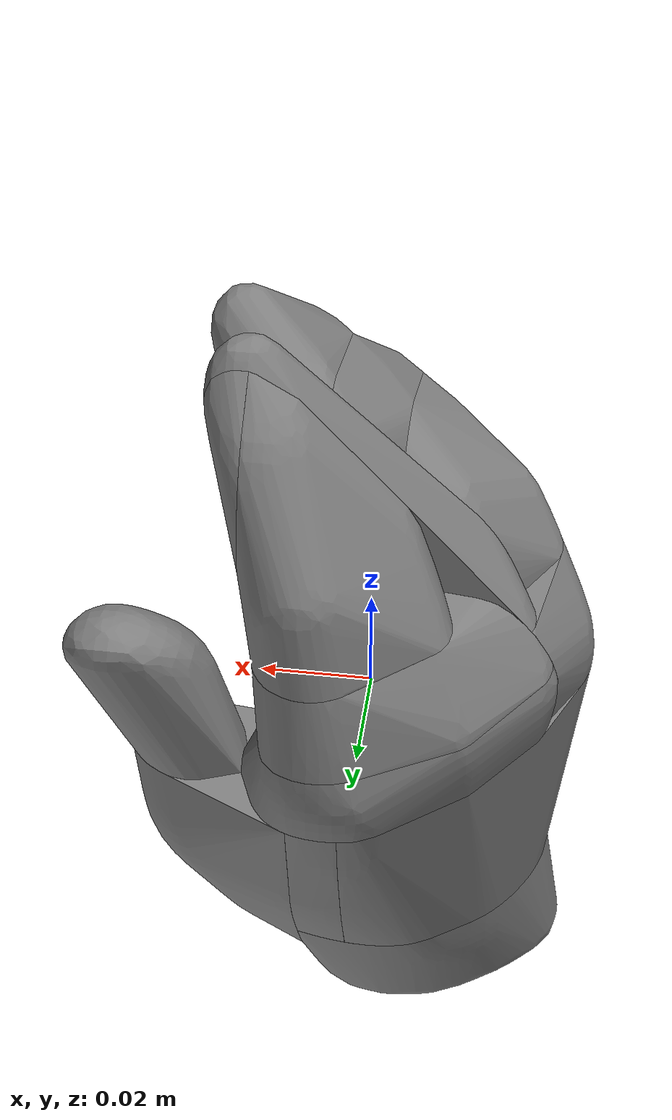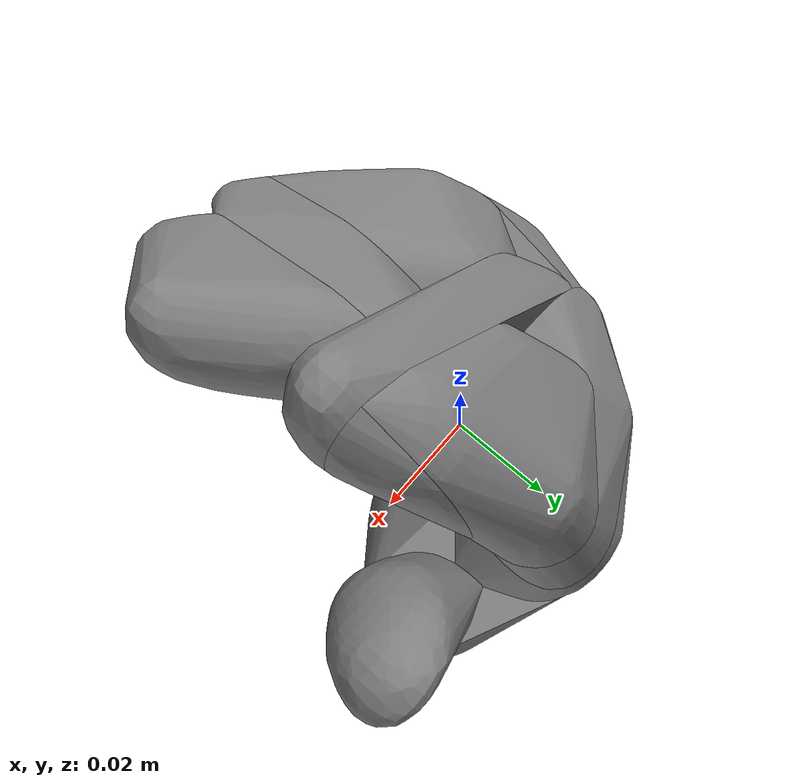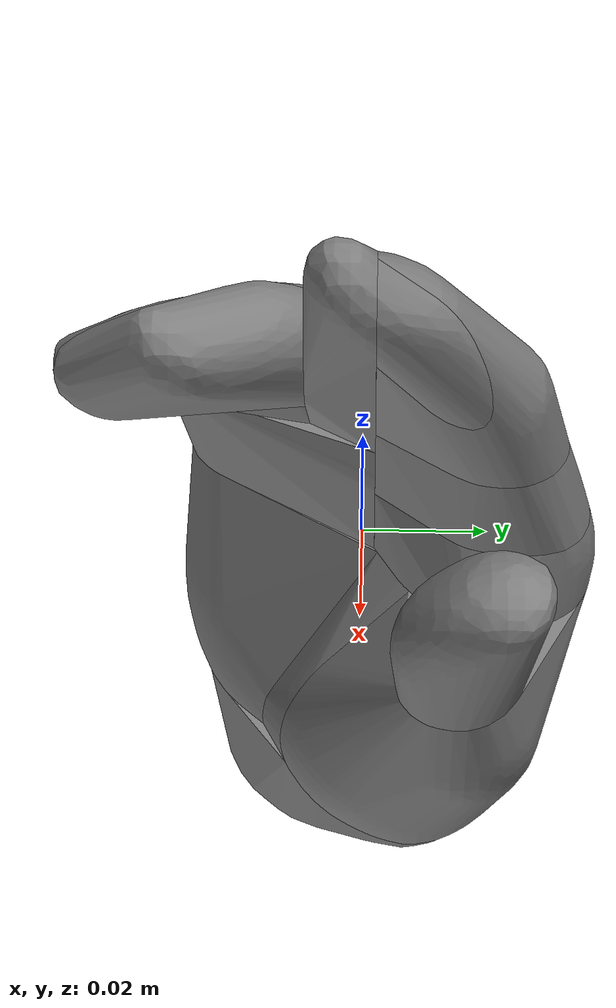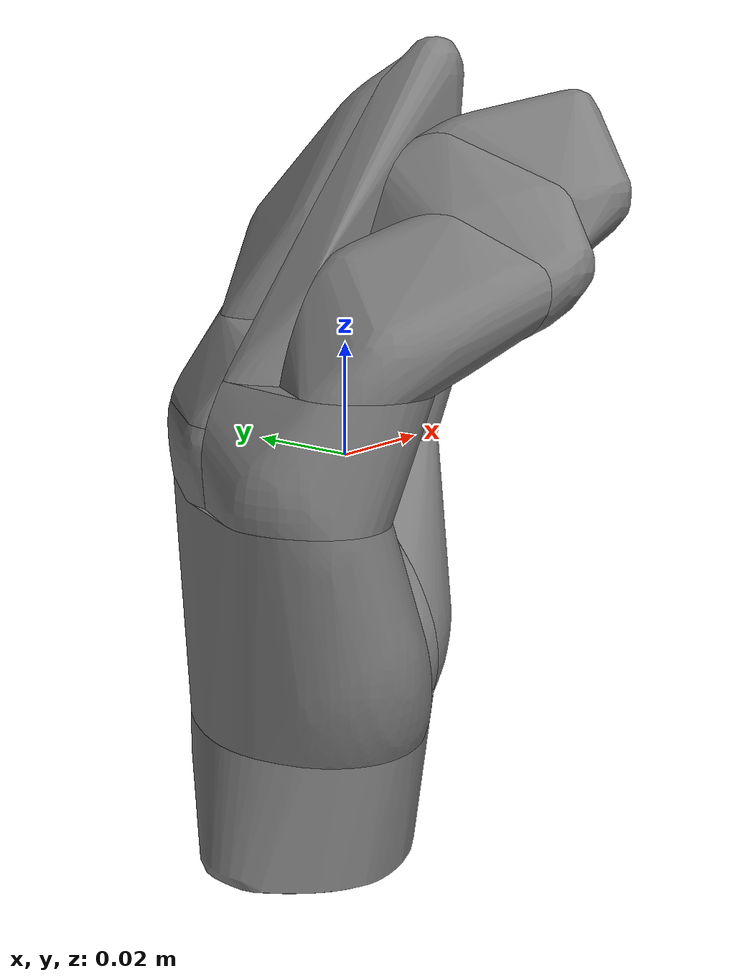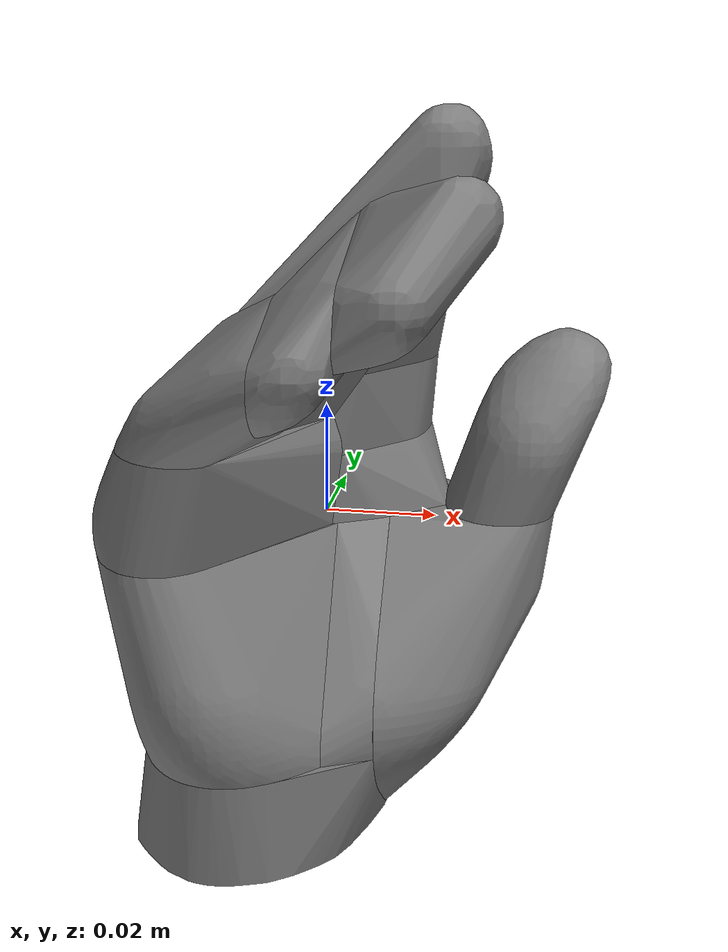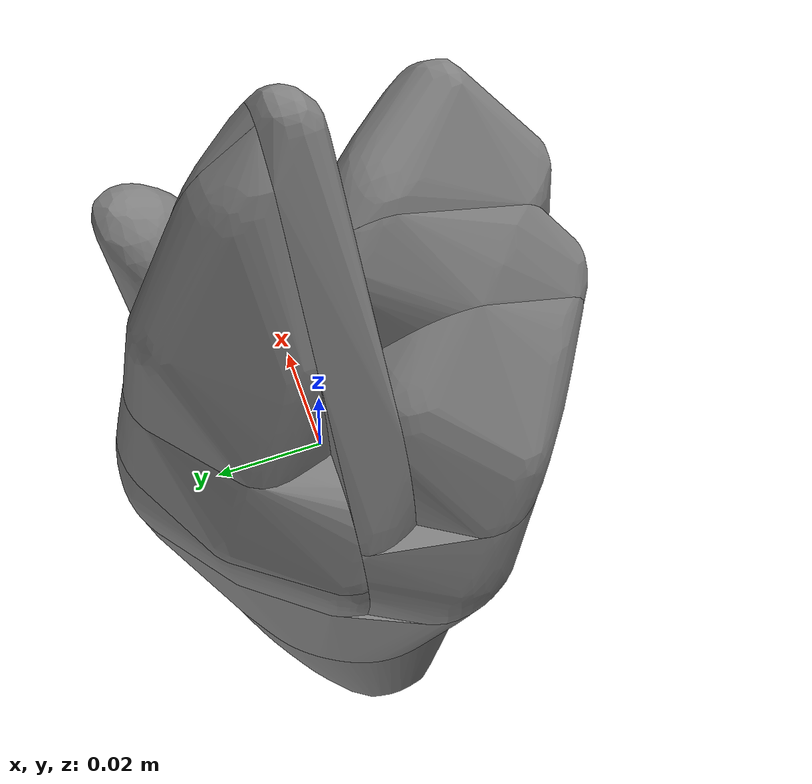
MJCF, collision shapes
<mujoco model="hand">
  <compiler meshdir="."/>

  <asset>
    <mesh name="hand" file="hand.stl"/>
    <mesh name="hand_collision_hull_000" file="hand_collision_hull_000.stl"/>
    <mesh name="hand_collision_hull_001" file="hand_collision_hull_001.stl"/>
    <mesh name="hand_collision_hull_002" file="hand_collision_hull_002.stl"/>
    <mesh name="hand_collision_hull_003" file="hand_collision_hull_003.stl"/>
    <mesh name="hand_collision_hull_004" file="hand_collision_hull_004.stl"/>
    <mesh name="hand_collision_hull_005" file="hand_collision_hull_005.stl"/>
    <mesh name="hand_collision_hull_006" file="hand_collision_hull_006.stl"/>
    <mesh name="hand_collision_hull_007" file="hand_collision_hull_007.stl"/>
    <mesh name="hand_collision_hull_008" file="hand_collision_hull_008.stl"/>
    <mesh name="hand_collision_hull_009" file="hand_collision_hull_009.stl"/>
    <mesh name="hand_collision_hull_010" file="hand_collision_hull_010.stl"/>
    <mesh name="hand_collision_hull_011" file="hand_collision_hull_011.stl"/>
    <mesh name="hand_collision_hull_012" file="hand_collision_hull_012.stl"/>
    <mesh name="hand_collision_hull_013" file="hand_collision_hull_013.stl"/>
  </asset>

  <worldbody>
    <body name="object">
      <freejoint name="object_joint"/>
      <geom name="object_visual" type="mesh" mesh="hand"
            contype="0" conaffinity="0" group="2" rgba="0.9 0.9 0.8 1" mass="0"/>
      <geom name="hand_collision_hull_000_collision" type="mesh" mesh="hand_collision_hull_000"
            mass="0.0036" condim="6" friction="1.0 0.002 0.002" priority="1"/>
      <geom name="hand_collision_hull_001_collision" type="mesh" mesh="hand_collision_hull_001"
            mass="0.0036" condim="6" friction="1.0 0.002 0.002" priority="1"/>
      <geom name="hand_collision_hull_002_collision" type="mesh" mesh="hand_collision_hull_002"
            mass="0.0036" condim="6" friction="1.0 0.002 0.002" priority="1"/>
      <geom name="hand_collision_hull_003_collision" type="mesh" mesh="hand_collision_hull_003"
            mass="0.0036" condim="6" friction="1.0 0.002 0.002" priority="1"/>
      <geom name="hand_collision_hull_004_collision" type="mesh" mesh="hand_collision_hull_004"
            mass="0.0036" condim="6" friction="1.0 0.002 0.002" priority="1"/>
      <geom name="hand_collision_hull_005_collision" type="mesh" mesh="hand_collision_hull_005"
            mass="0.0036" condim="6" friction="1.0 0.002 0.002" priority="1"/>
      <geom name="hand_collision_hull_006_collision" type="mesh" mesh="hand_collision_hull_006"
            mass="0.0036" condim="6" friction="1.0 0.002 0.002" priority="1"/>
      <geom name="hand_collision_hull_007_collision" type="mesh" mesh="hand_collision_hull_007"
            mass="0.0036" condim="6" friction="1.0 0.002 0.002" priority="1"/>
      <geom name="hand_collision_hull_008_collision" type="mesh" mesh="hand_collision_hull_008"
            mass="0.0036" condim="6" friction="1.0 0.002 0.002" priority="1"/>
      <geom name="hand_collision_hull_009_collision" type="mesh" mesh="hand_collision_hull_009"
            mass="0.0036" condim="6" friction="1.0 0.002 0.002" priority="1"/>
      <geom name="hand_collision_hull_010_collision" type="mesh" mesh="hand_collision_hull_010"
            mass="0.0036" condim="6" friction="1.0 0.002 0.002" priority="1"/>
      <geom name="hand_collision_hull_011_collision" type="mesh" mesh="hand_collision_hull_011"
            mass="0.0036" condim="6" friction="1.0 0.002 0.002" priority="1"/>
      <geom name="hand_collision_hull_012_collision" type="mesh" mesh="hand_collision_hull_012"
            mass="0.0036" condim="6" friction="1.0 0.002 0.002" priority="1"/>
      <geom name="hand_collision_hull_013_collision" type="mesh" mesh="hand_collision_hull_013"
            mass="0.0036" condim="6" friction="1.0 0.002 0.002" priority="1"/>
    </body>
  </worldbody>
</mujoco>
